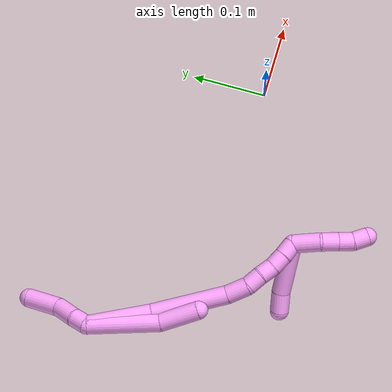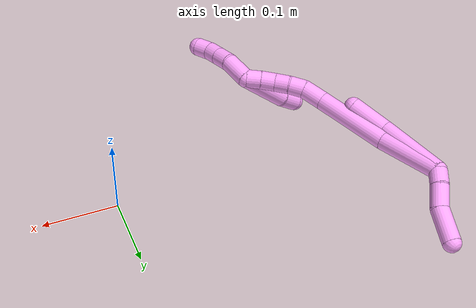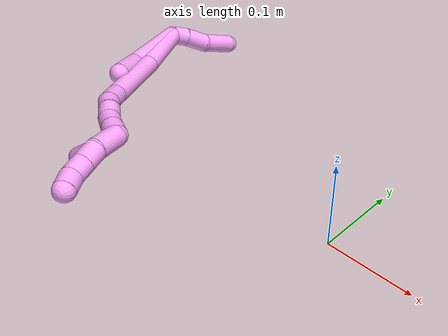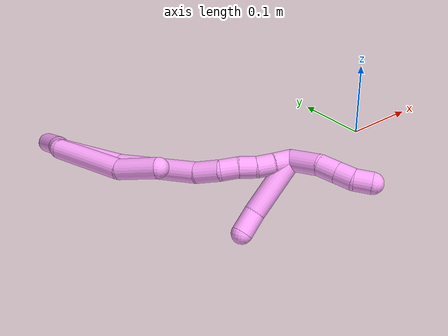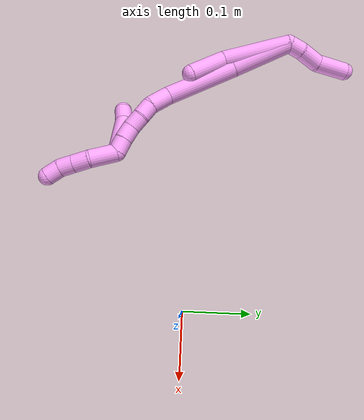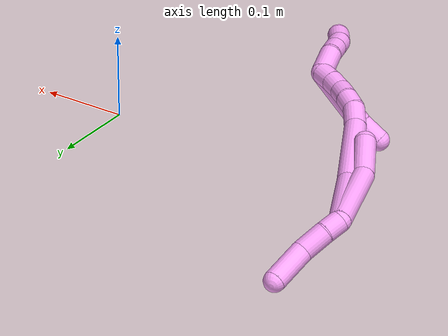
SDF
<sdf version="1.7">
 <world name="default">
  <model name="4">
   <static>0</static>
   <link name="4">
    <collision name="collision-cylinder-e_1_2_8">
     <pose>0.003956 0.001169 -0.048139 -3.11731 0.081963 -2.56582</pose>
     <geometry><cylinder><radius>0.0125</radius><length>0.096632</length></cylinder></geometry>
     <surface>
      <friction><ode><mu>1.16</mu><mu2>1.16</mu2><slip1>0</slip1><slip2>0</slip2></ode></friction>
      <contact><ode><kp>1e+06</kp><kd>1</kd><max_vel>0</max_vel><min_depth>0.001</min_depth></ode></contact>
     </surface>
    </collision>
    <visual name="visual-cylinder-e_1_2_8">
     <pose>0.003956 0.001169 -0.048139 -3.11731 0.081963 -2.56582</pose>
     <geometry><cylinder><radius>0.0125</radius><length>0.096632</length></cylinder></geometry>
     <material><ambient>1 0.65098 0.996078 1</ambient></material>
    </visual>
    <collision name="collision-cylinder-e_2_8_6">
     <pose>0.012711 -0.004769 -0.121547 2.86741 0.180842 1.16286</pose>
     <geometry><cylinder><radius>0.0125</radius><length>0.053368</length></cylinder></geometry>
     <surface>
      <friction><ode><mu>1.16</mu><mu2>1.16</mu2><slip1>0</slip1><slip2>0</slip2></ode></friction>
      <contact><ode><kp>1e+06</kp><kd>1</kd><max_vel>0</max_vel><min_depth>0.001</min_depth></ode></contact>
     </surface>
    </collision>
    <visual name="visual-cylinder-e_2_8_6">
     <pose>0.012711 -0.004769 -0.121547 2.86741 0.180842 1.16286</pose>
     <geometry><cylinder><radius>0.0125</radius><length>0.053368</length></cylinder></geometry>
     <material><ambient>1 0.65098 0.996078 1</ambient></material>
    </visual>
    <collision name="collision-cylinder-e_1_2_9">
     <pose>0.006129 0.000261 0.008546 -0.030488 0.62198 -0.0098</pose>
     <geometry><cylinder><radius>0.0125</radius><length>0.021039</length></cylinder></geometry>
     <surface>
      <friction><ode><mu>1.16</mu><mu2>1.16</mu2><slip1>0</slip1><slip2>0</slip2></ode></friction>
      <contact><ode><kp>1e+06</kp><kd>1</kd><max_vel>0</max_vel><min_depth>0.001</min_depth></ode></contact>
     </surface>
    </collision>
    <visual name="visual-cylinder-e_1_2_9">
     <pose>0.006129 0.000261 0.008546 -0.030488 0.62198 -0.0098</pose>
     <geometry><cylinder><radius>0.0125</radius><length>0.021039</length></cylinder></geometry>
     <material><ambient>1 0.65098 0.996078 1</ambient></material>
    </visual>
    <collision name="collision-cylinder-e_2_9_10">
     <pose>0.022884 0.002615 0.028645 -0.179296 0.735517 -0.069238</pose>
     <geometry><cylinder><radius>0.0125</radius><length>0.031672</length></cylinder></geometry>
     <surface>
      <friction><ode><mu>1.16</mu><mu2>1.16</mu2><slip1>0</slip1><slip2>0</slip2></ode></friction>
      <contact><ode><kp>1e+06</kp><kd>1</kd><max_vel>0</max_vel><min_depth>0.001</min_depth></ode></contact>
     </surface>
    </collision>
    <visual name="visual-cylinder-e_2_9_10">
     <pose>0.022884 0.002615 0.028645 -0.179296 0.735517 -0.069238</pose>
     <geometry><cylinder><radius>0.0125</radius><length>0.031672</length></cylinder></geometry>
     <material><ambient>1 0.65098 0.996078 1</ambient></material>
    </visual>
    <collision name="collision-cylinder-e_3_10_5">
     <pose>0.043133 0.007038 0.06167 -0.108023 0.419208 -0.023001</pose>
     <geometry><cylinder><radius>0.0125</radius><length>0.047289</length></cylinder></geometry>
     <surface>
      <friction><ode><mu>1.16</mu><mu2>1.16</mu2><slip1>0</slip1><slip2>0</slip2></ode></friction>
      <contact><ode><kp>1e+06</kp><kd>1</kd><max_vel>0</max_vel><min_depth>0.001</min_depth></ode></contact>
     </surface>
    </collision>
    <visual name="visual-cylinder-e_3_10_5">
     <pose>0.043133 0.007038 0.06167 -0.108023 0.419208 -0.023001</pose>
     <geometry><cylinder><radius>0.0125</radius><length>0.047289</length></cylinder></geometry>
     <material><ambient>1 0.65098 0.996078 1</ambient></material>
    </visual>
    <collision name="collision-cylinder-e_1_2_11">
     <pose>0.010573 -0.000304 -0.042016 3.13436 0.246518 3.08322</pose>
     <geometry><cylinder><radius>0.0125</radius><length>0.086653</length></cylinder></geometry>
     <surface>
      <friction><ode><mu>1.16</mu><mu2>1.16</mu2><slip1>0</slip1><slip2>0</slip2></ode></friction>
      <contact><ode><kp>1e+06</kp><kd>1</kd><max_vel>0</max_vel><min_depth>0.001</min_depth></ode></contact>
     </surface>
    </collision>
    <visual name="visual-cylinder-e_1_2_11">
     <pose>0.010573 -0.000304 -0.042016 3.13436 0.246518 3.08322</pose>
     <geometry><cylinder><radius>0.0125</radius><length>0.086653</length></cylinder></geometry>
     <material><ambient>1 0.65098 0.996078 1</ambient></material>
    </visual>
    <collision name="collision-cylinder-e_2_11_12">
     <pose>0.031504 -0.007921 -0.133646 2.99526 0.203674 1.89714</pose>
     <geometry><cylinder><radius>0.0125</radius><length>0.102418</length></cylinder></geometry>
     <surface>
      <friction><ode><mu>1.16</mu><mu2>1.16</mu2><slip1>0</slip1><slip2>0</slip2></ode></friction>
      <contact><ode><kp>1e+06</kp><kd>1</kd><max_vel>0</max_vel><min_depth>0.001</min_depth></ode></contact>
     </surface>
    </collision>
    <visual name="visual-cylinder-e_2_11_12">
     <pose>0.031504 -0.007921 -0.133646 2.99526 0.203674 1.89714</pose>
     <geometry><cylinder><radius>0.0125</radius><length>0.102418</length></cylinder></geometry>
     <material><ambient>1 0.65098 0.996078 1</ambient></material>
    </visual>
    <collision name="collision-cylinder-e_3_12_13">
     <pose>0.045651 -0.019915 -0.196838 2.80955 0.257959 1.31741</pose>
     <geometry><cylinder><radius>0.0125</radius><length>0.029706</length></cylinder></geometry>
     <surface>
      <friction><ode><mu>1.16</mu><mu2>1.16</mu2><slip1>0</slip1><slip2>0</slip2></ode></friction>
      <contact><ode><kp>1e+06</kp><kd>1</kd><max_vel>0</max_vel><min_depth>0.001</min_depth></ode></contact>
     </surface>
    </collision>
    <visual name="visual-cylinder-e_3_12_13">
     <pose>0.045651 -0.019915 -0.196838 2.80955 0.257959 1.31741</pose>
     <geometry><cylinder><radius>0.0125</radius><length>0.029706</length></cylinder></geometry>
     <material><ambient>1 0.65098 0.996078 1</ambient></material>
    </visual>
    <collision name="collision-cylinder-e_4_13_14">
     <pose>0.055176 -0.028277 -0.218211 2.70043 0.587098 1.86515</pose>
     <geometry><cylinder><radius>0.0125</radius><length>0.02071</length></cylinder></geometry>
     <surface>
      <friction><ode><mu>1.16</mu><mu2>1.16</mu2><slip1>0</slip1><slip2>0</slip2></ode></friction>
      <contact><ode><kp>1e+06</kp><kd>1</kd><max_vel>0</max_vel><min_depth>0.001</min_depth></ode></contact>
     </surface>
    </collision>
    <visual name="visual-cylinder-e_4_13_14">
     <pose>0.055176 -0.028277 -0.218211 2.70043 0.587098 1.86515</pose>
     <geometry><cylinder><radius>0.0125</radius><length>0.02071</length></cylinder></geometry>
     <material><ambient>1 0.65098 0.996078 1</ambient></material>
    </visual>
    <collision name="collision-cylinder-e_5_14_15">
     <pose>0.066866 -0.033962 -0.233836 2.89114 0.634917 2.40983</pose>
     <geometry><cylinder><radius>0.0125</radius><length>0.020077</length></cylinder></geometry>
     <surface>
      <friction><ode><mu>1.16</mu><mu2>1.16</mu2><slip1>0</slip1><slip2>0</slip2></ode></friction>
      <contact><ode><kp>1e+06</kp><kd>1</kd><max_vel>0</max_vel><min_depth>0.001</min_depth></ode></contact>
     </surface>
    </collision>
    <visual name="visual-cylinder-e_5_14_15">
     <pose>0.066866 -0.033962 -0.233836 2.89114 0.634917 2.40983</pose>
     <geometry><cylinder><radius>0.0125</radius><length>0.020077</length></cylinder></geometry>
     <material><ambient>1 0.65098 0.996078 1</ambient></material>
    </visual>
    <collision name="collision-cylinder-e_6_15_16">
     <pose>0.079348 -0.039612 -0.248471 2.64961 0.701869 1.93927</pose>
     <geometry><cylinder><radius>0.0125</radius><length>0.020221</length></cylinder></geometry>
     <surface>
      <friction><ode><mu>1.16</mu><mu2>1.16</mu2><slip1>0</slip1><slip2>0</slip2></ode></friction>
      <contact><ode><kp>1e+06</kp><kd>1</kd><max_vel>0</max_vel><min_depth>0.001</min_depth></ode></contact>
     </surface>
    </collision>
    <visual name="visual-cylinder-e_6_15_16">
     <pose>0.079348 -0.039612 -0.248471 2.64961 0.701869 1.93927</pose>
     <geometry><cylinder><radius>0.0125</radius><length>0.020221</length></cylinder></geometry>
     <material><ambient>1 0.65098 0.996078 1</ambient></material>
    </visual>
    <collision name="collision-cylinder-e_7_16_1">
     <pose>0.093061 -0.046961 -0.261344 2.59371 0.790799 1.95649</pose>
     <geometry><cylinder><radius>0.0125</radius><length>0.020215</length></cylinder></geometry>
     <surface>
      <friction><ode><mu>1.16</mu><mu2>1.16</mu2><slip1>0</slip1><slip2>0</slip2></ode></friction>
      <contact><ode><kp>1e+06</kp><kd>1</kd><max_vel>0</max_vel><min_depth>0.001</min_depth></ode></contact>
     </surface>
    </collision>
    <visual name="visual-cylinder-e_7_16_1">
     <pose>0.093061 -0.046961 -0.261344 2.59371 0.790799 1.95649</pose>
     <geometry><cylinder><radius>0.0125</radius><length>0.020215</length></cylinder></geometry>
     <material><ambient>1 0.65098 0.996078 1</ambient></material>
    </visual>
    <collision name="collision-cylinder-e_1_1_17">
     <pose>0.100852 -0.052312 -0.285963 3.05299 0.032495 0.702681</pose>
     <geometry><cylinder><radius>0.0125</radius><length>0.037267</length></cylinder></geometry>
     <surface>
      <friction><ode><mu>1.16</mu><mu2>1.16</mu2><slip1>0</slip1><slip2>0</slip2></ode></friction>
      <contact><ode><kp>1e+06</kp><kd>1</kd><max_vel>0</max_vel><min_depth>0.001</min_depth></ode></contact>
     </surface>
    </collision>
    <visual name="visual-cylinder-e_1_1_17">
     <pose>0.100852 -0.052312 -0.285963 3.05299 0.032495 0.702681</pose>
     <geometry><cylinder><radius>0.0125</radius><length>0.037267</length></cylinder></geometry>
     <material><ambient>1 0.65098 0.996078 1</ambient></material>
    </visual>
    <collision name="collision-cylinder-e_2_17_18">
     <pose>0.103263 -0.052254 -0.315455 -2.98696 0.161644 -1.61533</pose>
     <geometry><cylinder><radius>0.0125</radius><length>0.022441</length></cylinder></geometry>
     <surface>
      <friction><ode><mu>1.16</mu><mu2>1.16</mu2><slip1>0</slip1><slip2>0</slip2></ode></friction>
      <contact><ode><kp>1e+06</kp><kd>1</kd><max_vel>0</max_vel><min_depth>0.001</min_depth></ode></contact>
     </surface>
    </collision>
    <visual name="visual-cylinder-e_2_17_18">
     <pose>0.103263 -0.052254 -0.315455 -2.98696 0.161644 -1.61533</pose>
     <geometry><cylinder><radius>0.0125</radius><length>0.022441</length></cylinder></geometry>
     <material><ambient>1 0.65098 0.996078 1</ambient></material>
    </visual>
    <collision name="collision-cylinder-e_3_18_19">
     <pose>0.106753 -0.049066 -0.336178 -2.99116 0.168659 -1.68541</pose>
     <geometry><cylinder><radius>0.0125</radius><length>0.020069</length></cylinder></geometry>
     <surface>
      <friction><ode><mu>1.16</mu><mu2>1.16</mu2><slip1>0</slip1><slip2>0</slip2></ode></friction>
      <contact><ode><kp>1e+06</kp><kd>1</kd><max_vel>0</max_vel><min_depth>0.001</min_depth></ode></contact>
     </surface>
    </collision>
    <visual name="visual-cylinder-e_3_18_19">
     <pose>0.106753 -0.049066 -0.336178 -2.99116 0.168659 -1.68541</pose>
     <geometry><cylinder><radius>0.0125</radius><length>0.020069</length></cylinder></geometry>
     <material><ambient>1 0.65098 0.996078 1</ambient></material>
    </visual>
    <collision name="collision-cylinder-e_4_19_4">
     <pose>0.112338 -0.048015 -0.355277 3.09534 0.396022 2.91204</pose>
     <geometry><cylinder><radius>0.0125</radius><length>0.020223</length></cylinder></geometry>
     <surface>
      <friction><ode><mu>1.16</mu><mu2>1.16</mu2><slip1>0</slip1><slip2>0</slip2></ode></friction>
      <contact><ode><kp>1e+06</kp><kd>1</kd><max_vel>0</max_vel><min_depth>0.001</min_depth></ode></contact>
     </surface>
    </collision>
    <visual name="visual-cylinder-e_4_19_4">
     <pose>0.112338 -0.048015 -0.355277 3.09534 0.396022 2.91204</pose>
     <geometry><cylinder><radius>0.0125</radius><length>0.020223</length></cylinder></geometry>
     <material><ambient>1 0.65098 0.996078 1</ambient></material>
    </visual>
    <collision name="collision-cylinder-e_1_1_20">
     <pose>0.086928 -0.018108 -0.259111 -1.32114 -0.37742 0.294645</pose>
     <geometry><cylinder><radius>0.0125</radius><length>0.072282</length></cylinder></geometry>
     <surface>
      <friction><ode><mu>1.16</mu><mu2>1.16</mu2><slip1>0</slip1><slip2>0</slip2></ode></friction>
      <contact><ode><kp>1e+06</kp><kd>1</kd><max_vel>0</max_vel><min_depth>0.001</min_depth></ode></contact>
     </surface>
    </collision>
    <visual name="visual-cylinder-e_1_1_20">
     <pose>0.086928 -0.018108 -0.259111 -1.32114 -0.37742 0.294645</pose>
     <geometry><cylinder><radius>0.0125</radius><length>0.072282</length></cylinder></geometry>
     <material><ambient>1 0.65098 0.996078 1</ambient></material>
    </visual>
    <collision name="collision-cylinder-e_2_20_3">
     <pose>0.067129 0.026626 -0.249485 -1.46243 -0.486557 0.438168</pose>
     <geometry><cylinder><radius>0.0125</radius><length>0.027718</length></cylinder></geometry>
     <surface>
      <friction><ode><mu>1.16</mu><mu2>1.16</mu2><slip1>0</slip1><slip2>0</slip2></ode></friction>
      <contact><ode><kp>1e+06</kp><kd>1</kd><max_vel>0</max_vel><min_depth>0.001</min_depth></ode></contact>
     </surface>
    </collision>
    <visual name="visual-cylinder-e_2_20_3">
     <pose>0.067129 0.026626 -0.249485 -1.46243 -0.486557 0.438168</pose>
     <geometry><cylinder><radius>0.0125</radius><length>0.027718</length></cylinder></geometry>
     <material><ambient>1 0.65098 0.996078 1</ambient></material>
    </visual>
    <collision name="collision-sphere-3">
     <pose>0.060648 0.038805 -0.24816 0 -0 0</pose>
     <geometry><sphere><radius>0.0125</radius></sphere></geometry>
     <surface>
      <friction><ode><mu>1.16</mu><mu2>1.16</mu2><slip1>0</slip1><slip2>0</slip2></ode></friction>
      <contact><ode><kp>1e+06</kp><kd>1</kd><max_vel>0</max_vel><min_depth>0.001</min_depth></ode></contact>
     </surface>
    </collision>
    <visual name="visual-sphere-3">
     <pose>0.060648 0.038805 -0.24816 0 -0 0</pose>
     <geometry><sphere><radius>0.0125</radius></sphere></geometry>
     <material><ambient>1 0.65098 0.996078 1</ambient></material>
    </visual>
    <collision name="collision-sphere-20">
     <pose>0.073609 0.014448 -0.25081 0 -0 0</pose>
     <geometry><sphere><radius>0.0125</radius></sphere></geometry>
     <surface>
      <friction><ode><mu>1.16</mu><mu2>1.16</mu2><slip1>0</slip1><slip2>0</slip2></ode></friction>
      <contact><ode><kp>1e+06</kp><kd>1</kd><max_vel>0</max_vel><min_depth>0.001</min_depth></ode></contact>
     </surface>
    </collision>
    <visual name="visual-sphere-20">
     <pose>0.073609 0.014448 -0.25081 0 -0 0</pose>
     <geometry><sphere><radius>0.0125</radius></sphere></geometry>
     <material><ambient>1 0.65098 0.996078 1</ambient></material>
    </visual>
    <collision name="collision-sphere-4">
     <pose>0.116239 -0.048446 -0.364596 0 -0 0</pose>
     <geometry><sphere><radius>0.0125</radius></sphere></geometry>
     <surface>
      <friction><ode><mu>1.16</mu><mu2>1.16</mu2><slip1>0</slip1><slip2>0</slip2></ode></friction>
      <contact><ode><kp>1e+06</kp><kd>1</kd><max_vel>0</max_vel><min_depth>0.001</min_depth></ode></contact>
     </surface>
    </collision>
    <visual name="visual-sphere-4">
     <pose>0.116239 -0.048446 -0.364596 0 -0 0</pose>
     <geometry><sphere><radius>0.0125</radius></sphere></geometry>
     <material><ambient>1 0.65098 0.996078 1</ambient></material>
    </visual>
    <collision name="collision-sphere-5">
     <pose>0.052758 0.009366 0.083141 0 -0 0</pose>
     <geometry><sphere><radius>0.0125</radius></sphere></geometry>
     <surface>
      <friction><ode><mu>1.16</mu><mu2>1.16</mu2><slip1>0</slip1><slip2>0</slip2></ode></friction>
      <contact><ode><kp>1e+06</kp><kd>1</kd><max_vel>0</max_vel><min_depth>0.001</min_depth></ode></contact>
     </surface>
    </collision>
    <visual name="visual-sphere-5">
     <pose>0.052758 0.009366 0.083141 0 -0 0</pose>
     <geometry><sphere><radius>0.0125</radius></sphere></geometry>
     <material><ambient>1 0.65098 0.996078 1</ambient></material>
    </visual>
    <collision name="collision-sphere-10">
     <pose>0.033509 0.004709 0.040199 0 -0 0</pose>
     <geometry><sphere><radius>0.0125</radius></sphere></geometry>
     <surface>
      <friction><ode><mu>1.16</mu><mu2>1.16</mu2><slip1>0</slip1><slip2>0</slip2></ode></friction>
      <contact><ode><kp>1e+06</kp><kd>1</kd><max_vel>0</max_vel><min_depth>0.001</min_depth></ode></contact>
     </surface>
    </collision>
    <visual name="visual-sphere-10">
     <pose>0.033509 0.004709 0.040199 0 -0 0</pose>
     <geometry><sphere><radius>0.0125</radius></sphere></geometry>
     <material><ambient>1 0.65098 0.996078 1</ambient></material>
    </visual>
    <collision name="collision-sphere-6">
     <pose>0.01751 -0.011876 -0.146816 0 -0 0</pose>
     <geometry><sphere><radius>0.0125</radius></sphere></geometry>
     <surface>
      <friction><ode><mu>1.16</mu><mu2>1.16</mu2><slip1>0</slip1><slip2>0</slip2></ode></friction>
      <contact><ode><kp>1e+06</kp><kd>1</kd><max_vel>0</max_vel><min_depth>0.001</min_depth></ode></contact>
     </surface>
    </collision>
    <visual name="visual-sphere-6">
     <pose>0.01751 -0.011876 -0.146816 0 -0 0</pose>
     <geometry><sphere><radius>0.0125</radius></sphere></geometry>
     <material><ambient>1 0.65098 0.996078 1</ambient></material>
    </visual>
    <collision name="collision-sphere-9">
     <pose>0.012258 0.000521 0.017091 0 -0 0</pose>
     <geometry><sphere><radius>0.0125</radius></sphere></geometry>
     <surface>
      <friction><ode><mu>1.16</mu><mu2>1.16</mu2><slip1>0</slip1><slip2>0</slip2></ode></friction>
      <contact><ode><kp>1e+06</kp><kd>1</kd><max_vel>0</max_vel><min_depth>0.001</min_depth></ode></contact>
     </surface>
    </collision>
    <visual name="visual-sphere-9">
     <pose>0.012258 0.000521 0.017091 0 -0 0</pose>
     <geometry><sphere><radius>0.0125</radius></sphere></geometry>
     <material><ambient>1 0.65098 0.996078 1</ambient></material>
    </visual>
    <collision name="collision-sphere-2">
     <geometry><sphere><radius>0.0125</radius></sphere></geometry>
     <surface>
      <friction><ode><mu>1.16</mu><mu2>1.16</mu2><slip1>0</slip1><slip2>0</slip2></ode></friction>
      <contact><ode><kp>1e+06</kp><kd>1</kd><max_vel>0</max_vel><min_depth>0.001</min_depth></ode></contact>
     </surface>
    </collision>
    <visual name="visual-sphere-2">
     <geometry><sphere><radius>0.0125</radius></sphere></geometry>
     <material><ambient>1 0.65098 0.996078 1</ambient></material>
    </visual>
    <collision name="collision-sphere-19">
     <pose>0.108438 -0.047584 -0.345958 0 -0 0</pose>
     <geometry><sphere><radius>0.0125</radius></sphere></geometry>
     <surface>
      <friction><ode><mu>1.16</mu><mu2>1.16</mu2><slip1>0</slip1><slip2>0</slip2></ode></friction>
      <contact><ode><kp>1e+06</kp><kd>1</kd><max_vel>0</max_vel><min_depth>0.001</min_depth></ode></contact>
     </surface>
    </collision>
    <visual name="visual-sphere-19">
     <pose>0.108438 -0.047584 -0.345958 0 -0 0</pose>
     <geometry><sphere><radius>0.0125</radius></sphere></geometry>
     <material><ambient>1 0.65098 0.996078 1</ambient></material>
    </visual>
    <collision name="collision-sphere-8">
     <pose>0.007911 0.002338 -0.096279 0 -0 0</pose>
     <geometry><sphere><radius>0.0125</radius></sphere></geometry>
     <surface>
      <friction><ode><mu>1.16</mu><mu2>1.16</mu2><slip1>0</slip1><slip2>0</slip2></ode></friction>
      <contact><ode><kp>1e+06</kp><kd>1</kd><max_vel>0</max_vel><min_depth>0.001</min_depth></ode></contact>
     </surface>
    </collision>
    <visual name="visual-sphere-8">
     <pose>0.007911 0.002338 -0.096279 0 -0 0</pose>
     <geometry><sphere><radius>0.0125</radius></sphere></geometry>
     <material><ambient>1 0.65098 0.996078 1</ambient></material>
    </visual>
    <collision name="collision-sphere-11">
     <pose>0.021146 -0.000608 -0.084031 0 -0 0</pose>
     <geometry><sphere><radius>0.0125</radius></sphere></geometry>
     <surface>
      <friction><ode><mu>1.16</mu><mu2>1.16</mu2><slip1>0</slip1><slip2>0</slip2></ode></friction>
      <contact><ode><kp>1e+06</kp><kd>1</kd><max_vel>0</max_vel><min_depth>0.001</min_depth></ode></contact>
     </surface>
    </collision>
    <visual name="visual-sphere-11">
     <pose>0.021146 -0.000608 -0.084031 0 -0 0</pose>
     <geometry><sphere><radius>0.0125</radius></sphere></geometry>
     <material><ambient>1 0.65098 0.996078 1</ambient></material>
    </visual>
    <collision name="collision-sphere-12">
     <pose>0.041862 -0.015233 -0.183261 0 -0 0</pose>
     <geometry><sphere><radius>0.0125</radius></sphere></geometry>
     <surface>
      <friction><ode><mu>1.16</mu><mu2>1.16</mu2><slip1>0</slip1><slip2>0</slip2></ode></friction>
      <contact><ode><kp>1e+06</kp><kd>1</kd><max_vel>0</max_vel><min_depth>0.001</min_depth></ode></contact>
     </surface>
    </collision>
    <visual name="visual-sphere-12">
     <pose>0.041862 -0.015233 -0.183261 0 -0 0</pose>
     <geometry><sphere><radius>0.0125</radius></sphere></geometry>
     <material><ambient>1 0.65098 0.996078 1</ambient></material>
    </visual>
    <collision name="collision-sphere-13">
     <pose>0.04944 -0.024596 -0.210415 0 -0 0</pose>
     <geometry><sphere><radius>0.0125</radius></sphere></geometry>
     <surface>
      <friction><ode><mu>1.16</mu><mu2>1.16</mu2><slip1>0</slip1><slip2>0</slip2></ode></friction>
      <contact><ode><kp>1e+06</kp><kd>1</kd><max_vel>0</max_vel><min_depth>0.001</min_depth></ode></contact>
     </surface>
    </collision>
    <visual name="visual-sphere-13">
     <pose>0.04944 -0.024596 -0.210415 0 -0 0</pose>
     <geometry><sphere><radius>0.0125</radius></sphere></geometry>
     <material><ambient>1 0.65098 0.996078 1</ambient></material>
    </visual>
    <collision name="collision-sphere-14">
     <pose>0.060912 -0.031958 -0.226006 0 -0 0</pose>
     <geometry><sphere><radius>0.0125</radius></sphere></geometry>
     <surface>
      <friction><ode><mu>1.16</mu><mu2>1.16</mu2><slip1>0</slip1><slip2>0</slip2></ode></friction>
      <contact><ode><kp>1e+06</kp><kd>1</kd><max_vel>0</max_vel><min_depth>0.001</min_depth></ode></contact>
     </surface>
    </collision>
    <visual name="visual-sphere-14">
     <pose>0.060912 -0.031958 -0.226006 0 -0 0</pose>
     <geometry><sphere><radius>0.0125</radius></sphere></geometry>
     <material><ambient>1 0.65098 0.996078 1</ambient></material>
    </visual>
    <collision name="collision-sphere-15">
     <pose>0.07282 -0.035965 -0.241666 0 -0 0</pose>
     <geometry><sphere><radius>0.0125</radius></sphere></geometry>
     <surface>
      <friction><ode><mu>1.16</mu><mu2>1.16</mu2><slip1>0</slip1><slip2>0</slip2></ode></friction>
      <contact><ode><kp>1e+06</kp><kd>1</kd><max_vel>0</max_vel><min_depth>0.001</min_depth></ode></contact>
     </surface>
    </collision>
    <visual name="visual-sphere-15">
     <pose>0.07282 -0.035965 -0.241666 0 -0 0</pose>
     <geometry><sphere><radius>0.0125</radius></sphere></geometry>
     <material><ambient>1 0.65098 0.996078 1</ambient></material>
    </visual>
    <collision name="collision-sphere-16">
     <pose>0.085876 -0.043259 -0.255276 0 -0 0</pose>
     <geometry><sphere><radius>0.0125</radius></sphere></geometry>
     <surface>
      <friction><ode><mu>1.16</mu><mu2>1.16</mu2><slip1>0</slip1><slip2>0</slip2></ode></friction>
      <contact><ode><kp>1e+06</kp><kd>1</kd><max_vel>0</max_vel><min_depth>0.001</min_depth></ode></contact>
     </surface>
    </collision>
    <visual name="visual-sphere-16">
     <pose>0.085876 -0.043259 -0.255276 0 -0 0</pose>
     <geometry><sphere><radius>0.0125</radius></sphere></geometry>
     <material><ambient>1 0.65098 0.996078 1</ambient></material>
    </visual>
    <collision name="collision-sphere-1">
     <pose>0.100247 -0.050664 -0.267412 0 -0 0</pose>
     <geometry><sphere><radius>0.0125</radius></sphere></geometry>
     <surface>
      <friction><ode><mu>1.16</mu><mu2>1.16</mu2><slip1>0</slip1><slip2>0</slip2></ode></friction>
      <contact><ode><kp>1e+06</kp><kd>1</kd><max_vel>0</max_vel><min_depth>0.001</min_depth></ode></contact>
     </surface>
    </collision>
    <visual name="visual-sphere-1">
     <pose>0.100247 -0.050664 -0.267412 0 -0 0</pose>
     <geometry><sphere><radius>0.0125</radius></sphere></geometry>
     <material><ambient>1 0.65098 0.996078 1</ambient></material>
    </visual>
    <collision name="collision-sphere-18">
     <pose>0.105069 -0.050549 -0.326397 0 -0 0</pose>
     <geometry><sphere><radius>0.0125</radius></sphere></geometry>
     <surface>
      <friction><ode><mu>1.16</mu><mu2>1.16</mu2><slip1>0</slip1><slip2>0</slip2></ode></friction>
      <contact><ode><kp>1e+06</kp><kd>1</kd><max_vel>0</max_vel><min_depth>0.001</min_depth></ode></contact>
     </surface>
    </collision>
    <visual name="visual-sphere-18">
     <pose>0.105069 -0.050549 -0.326397 0 -0 0</pose>
     <geometry><sphere><radius>0.0125</radius></sphere></geometry>
     <material><ambient>1 0.65098 0.996078 1</ambient></material>
    </visual>
    <collision name="collision-sphere-17">
     <pose>0.101457 -0.05396 -0.304514 0 -0 0</pose>
     <geometry><sphere><radius>0.0125</radius></sphere></geometry>
     <surface>
      <friction><ode><mu>1.16</mu><mu2>1.16</mu2><slip1>0</slip1><slip2>0</slip2></ode></friction>
      <contact><ode><kp>1e+06</kp><kd>1</kd><max_vel>0</max_vel><min_depth>0.001</min_depth></ode></contact>
     </surface>
    </collision>
    <visual name="visual-sphere-17">
     <pose>0.101457 -0.05396 -0.304514 0 -0 0</pose>
     <geometry><sphere><radius>0.0125</radius></sphere></geometry>
     <material><ambient>1 0.65098 0.996078 1</ambient></material>
    </visual>
    <inertial>
     <pose>0.04541 -0.013088 -0.142859 0 -0 0</pose>
     <mass>0.75</mass>
     <inertia><ixx>-7e-06</ixx><ixy>0</ixy><ixz>0</ixz><iyy>0.000262</iyy><iyz>0</iyz><izz>-9e-05</izz></inertia>
    </inertial>
   </link>
   <pose>-0.387654 0.137226 0.050054 -1.66871 0.434604 0.195568</pose>
  </model>
 </world>
</sdf>
